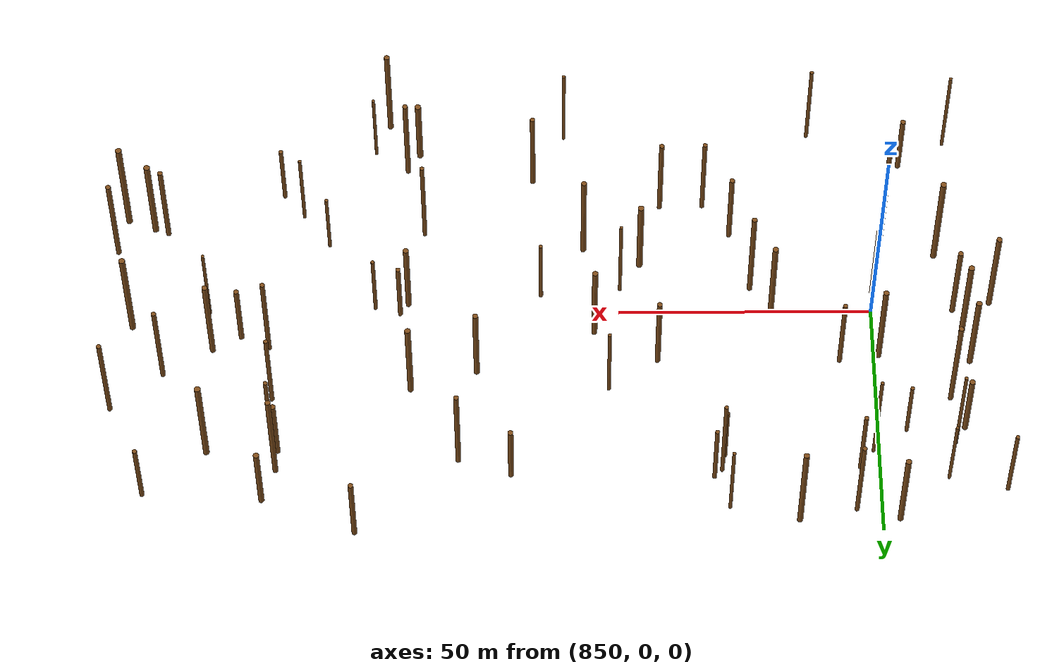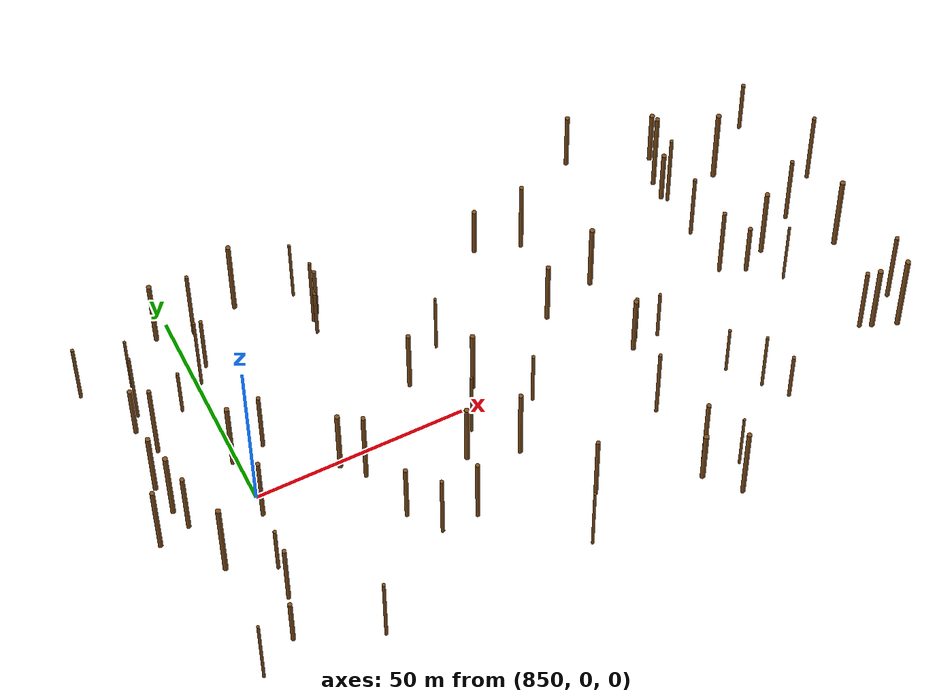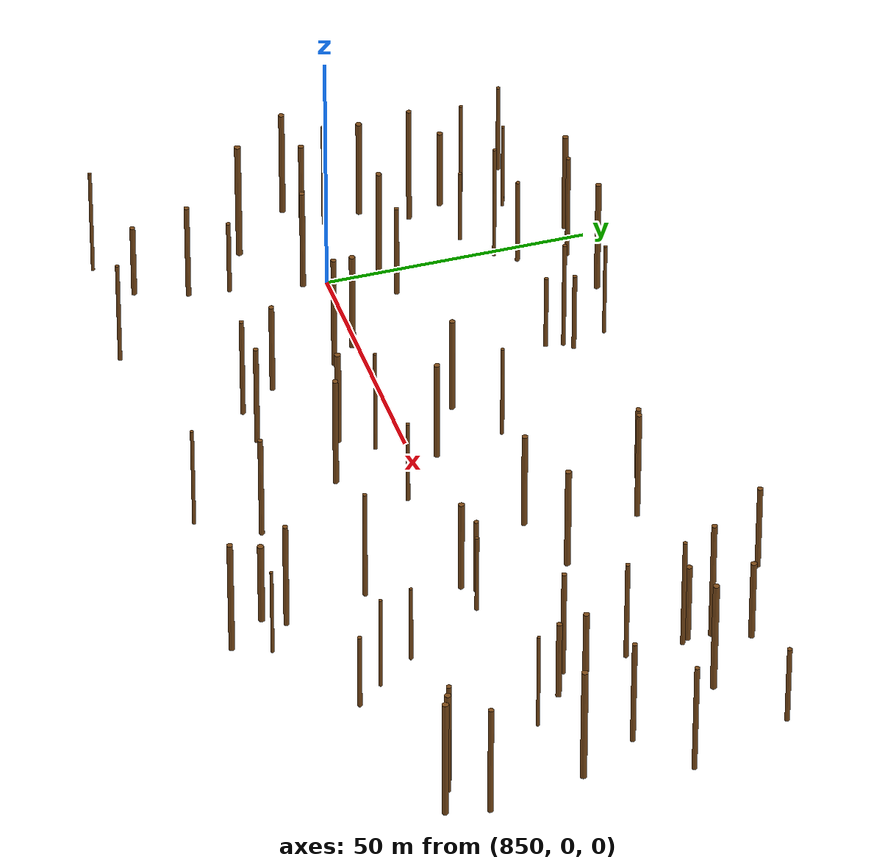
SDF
<sdf version="1.6">
 <world name="simple_forest">
  <include><uri>model://sun</uri></include>
  <model name="tree_6">
   <pose>957.6409414847134 -16.340545488737327 7.98358188416732 0 0 0</pose>
   <static>true</static>
   <link name="trunk">
    <collision name="collision">
     <geometry>
      <cylinder><radius>0.3278237530140444</radius><length>15.96716376833464</length></cylinder>
     </geometry>
    </collision>
    <visual name="visual">
     <geometry>
      <cylinder><radius>0.3278237530140444</radius><length>15.96716376833464</length></cylinder>
     </geometry>
     <material><ambient>0.5 0.3 0.1 1</ambient><diffuse>0.5 0.3 0.1 1</diffuse></material>
    </visual>
   </link>
  </model>
  <model name="tree_7">
   <pose>849.0194226839852 10.372603136689108 11.14865893346909 0 0 0</pose>
   <static>true</static>
   <link name="trunk">
    <collision name="collision">
     <geometry>
      <cylinder><radius>0.5421384819823141</radius><length>22.29731786693818</length></cylinder>
     </geometry>
    </collision>
    <visual name="visual">
     <geometry>
      <cylinder><radius>0.5421384819823141</radius><length>22.29731786693818</length></cylinder>
     </geometry>
     <material><ambient>0.5 0.3 0.1 1</ambient><diffuse>0.5 0.3 0.1 1</diffuse></material>
    </visual>
   </link>
  </model>
  <model name="tree_9">
   <pose>831.1106176104649 11.851975236424607 10.38676072628381 0 0 0</pose>
   <static>true</static>
   <link name="trunk">
    <collision name="collision">
     <geometry>
      <cylinder><radius>0.5585120700932331</radius><length>20.77352145256762</length></cylinder>
     </geometry>
    </collision>
    <visual name="visual">
     <geometry>
      <cylinder><radius>0.5585120700932331</radius><length>20.77352145256762</length></cylinder>
     </geometry>
     <material><ambient>0.5 0.3 0.1 1</ambient><diffuse>0.5 0.3 0.1 1</diffuse></material>
    </visual>
   </link>
  </model>
  <model name="tree_15">
   <pose>989.6281171302293 13.999975985409286 10.923071254949374 0 0 0</pose>
   <static>true</static>
   <link name="trunk">
    <collision name="collision">
     <geometry>
      <cylinder><radius>0.46708492313239386</radius><length>21.846142509898748</length></cylinder>
     </geometry>
    </collision>
    <visual name="visual">
     <geometry>
      <cylinder><radius>0.46708492313239386</radius><length>21.846142509898748</length></cylinder>
     </geometry>
     <material><ambient>0.5 0.3 0.1 1</ambient><diffuse>0.5 0.3 0.1 1</diffuse></material>
    </visual>
   </link>
  </model>
  <model name="tree_16">
   <pose>844.4234009879115 27.599991154624476 7.660501219520189 0 0 0</pose>
   <static>true</static>
   <link name="trunk">
    <collision name="collision">
     <geometry>
      <cylinder><radius>0.3687144215892313</radius><length>15.321002439040377</length></cylinder>
     </geometry>
    </collision>
    <visual name="visual">
     <geometry>
      <cylinder><radius>0.3687144215892313</radius><length>15.321002439040377</length></cylinder>
     </geometry>
     <material><ambient>0.5 0.3 0.1 1</ambient><diffuse>0.5 0.3 0.1 1</diffuse></material>
    </visual>
   </link>
  </model>
  <model name="tree_18">
   <pose>877.6039502079421 -18.532211920152207 9.47815950530332 0 0 0</pose>
   <static>true</static>
   <link name="trunk">
    <collision name="collision">
     <geometry>
      <cylinder><radius>0.49663159958846403</radius><length>18.95631901060664</length></cylinder>
     </geometry>
    </collision>
    <visual name="visual">
     <geometry>
      <cylinder><radius>0.49663159958846403</radius><length>18.95631901060664</length></cylinder>
     </geometry>
     <material><ambient>0.5 0.3 0.1 1</ambient><diffuse>0.5 0.3 0.1 1</diffuse></material>
    </visual>
   </link>
  </model>
  <model name="tree_19">
   <pose>915.4021138431381 -4.114814741260119 8.733137538469917 0 0 0</pose>
   <static>true</static>
   <link name="trunk">
    <collision name="collision">
     <geometry>
      <cylinder><radius>0.37946404994941574</radius><length>17.466275076939834</length></cylinder>
     </geometry>
    </collision>
    <visual name="visual">
     <geometry>
      <cylinder><radius>0.37946404994941574</radius><length>17.466275076939834</length></cylinder>
     </geometry>
     <material><ambient>0.5 0.3 0.1 1</ambient><diffuse>0.5 0.3 0.1 1</diffuse></material>
    </visual>
   </link>
  </model>
  <model name="tree_24">
   <pose>996.1601664376958 2.911434509913704 11.803898511172491 0 0 0</pose>
   <static>true</static>
   <link name="trunk">
    <collision name="collision">
     <geometry>
      <cylinder><radius>0.5913235132840855</radius><length>23.607797022344982</length></cylinder>
     </geometry>
    </collision>
    <visual name="visual">
     <geometry>
      <cylinder><radius>0.5913235132840855</radius><length>23.607797022344982</length></cylinder>
     </geometry>
     <material><ambient>0.5 0.3 0.1 1</ambient><diffuse>0.5 0.3 0.1 1</diffuse></material>
    </visual>
   </link>
  </model>
  <model name="tree_32">
   <pose>879.9346590449524 33.16655293611794 7.7896258324709375 0 0 0</pose>
   <static>true</static>
   <link name="trunk">
    <collision name="collision">
     <geometry>
      <cylinder><radius>0.3922542376207984</radius><length>15.579251664941875</length></cylinder>
     </geometry>
    </collision>
    <visual name="visual">
     <geometry>
      <cylinder><radius>0.3922542376207984</radius><length>15.579251664941875</length></cylinder>
     </geometry>
     <material><ambient>0.5 0.3 0.1 1</ambient><diffuse>0.5 0.3 0.1 1</diffuse></material>
    </visual>
   </link>
  </model>
  <model name="tree_33">
   <pose>879.2295032120002 44.694944529799415 9.92995231658307 0 0 0</pose>
   <static>true</static>
   <link name="trunk">
    <collision name="collision">
     <geometry>
      <cylinder><radius>0.32569603562036364</radius><length>19.85990463316614</length></cylinder>
     </geometry>
    </collision>
    <visual name="visual">
     <geometry>
      <cylinder><radius>0.32569603562036364</radius><length>19.85990463316614</length></cylinder>
     </geometry>
     <material><ambient>0.5 0.3 0.1 1</ambient><diffuse>0.5 0.3 0.1 1</diffuse></material>
    </visual>
   </link>
  </model>
  <model name="tree_41">
   <pose>861.039046251209 -42.91426501113466 10.844888891481403 0 0 0</pose>
   <static>true</static>
   <link name="trunk">
    <collision name="collision">
     <geometry>
      <cylinder><radius>0.3714013903106985</radius><length>21.689777782962807</length></cylinder>
     </geometry>
    </collision>
    <visual name="visual">
     <geometry>
      <cylinder><radius>0.3714013903106985</radius><length>21.689777782962807</length></cylinder>
     </geometry>
     <material><ambient>0.5 0.3 0.1 1</ambient><diffuse>0.5 0.3 0.1 1</diffuse></material>
    </visual>
   </link>
  </model>
  <model name="tree_50">
   <pose>969.3062947119038 42.63669830081275 8.33155555301957 0 0 0</pose>
   <static>true</static>
   <link name="trunk">
    <collision name="collision">
     <geometry>
      <cylinder><radius>0.5546087203242915</radius><length>16.66311110603914</length></cylinder>
     </geometry>
    </collision>
    <visual name="visual">
     <geometry>
      <cylinder><radius>0.5546087203242915</radius><length>16.66311110603914</length></cylinder>
     </geometry>
     <material><ambient>0.5 0.3 0.1 1</ambient><diffuse>0.5 0.3 0.1 1</diffuse></material>
    </visual>
   </link>
  </model>
  <model name="tree_55">
   <pose>969.0222713194672 7.918029081625619 11.239877801895322 0 0 0</pose>
   <static>true</static>
   <link name="trunk">
    <collision name="collision">
     <geometry>
      <cylinder><radius>0.46265856041228226</radius><length>22.479755603790643</length></cylinder>
     </geometry>
    </collision>
    <visual name="visual">
     <geometry>
      <cylinder><radius>0.46265856041228226</radius><length>22.479755603790643</length></cylinder>
     </geometry>
     <material><ambient>0.5 0.3 0.1 1</ambient><diffuse>0.5 0.3 0.1 1</diffuse></material>
    </visual>
   </link>
  </model>
  <model name="tree_59">
   <pose>891.3844409881432 -25.378465221137514 10.596907551660514 0 0 0</pose>
   <static>true</static>
   <link name="trunk">
    <collision name="collision">
     <geometry>
      <cylinder><radius>0.47835574606003234</radius><length>21.19381510332103</length></cylinder>
     </geometry>
    </collision>
    <visual name="visual">
     <geometry>
      <cylinder><radius>0.47835574606003234</radius><length>21.19381510332103</length></cylinder>
     </geometry>
     <material><ambient>0.5 0.3 0.1 1</ambient><diffuse>0.5 0.3 0.1 1</diffuse></material>
    </visual>
   </link>
  </model>
  <model name="tree_65">
   <pose>882.0555319495752 37.92702424845427 8.28873416178616 0 0 0</pose>
   <static>true</static>
   <link name="trunk">
    <collision name="collision">
     <geometry>
      <cylinder><radius>0.41085812662166515</radius><length>16.57746832357232</length></cylinder>
     </geometry>
    </collision>
    <visual name="visual">
     <geometry>
      <cylinder><radius>0.41085812662166515</radius><length>16.57746832357232</length></cylinder>
     </geometry>
     <material><ambient>0.5 0.3 0.1 1</ambient><diffuse>0.5 0.3 0.1 1</diffuse></material>
    </visual>
   </link>
  </model>
  <model name="tree_66">
   <pose>835.407505093409 20.353992508737093 12.43616531815752 0 0 0</pose>
   <static>true</static>
   <link name="trunk">
    <collision name="collision">
     <geometry><cylinder><radius>0.483503329717785</radius><length>24.87233063631504</length></cylinder></geometry>
    </collision>
    <visual name="visual">
     <geometry><cylinder><radius>0.483503329717785</radius><length>24.87233063631504</length></cylinder></geometry>
     <material><ambient>0.5 0.3 0.1 1</ambient><diffuse>0.5 0.3 0.1 1</diffuse></material>
    </visual>
   </link>
  </model>
  <model name="tree_75">
   <pose>904.8892858442942 4.55902892055223 10.41254783244897 0 0 0</pose>
   <static>true</static>
   <link name="trunk">
    <collision name="collision">
     <geometry>
      <cylinder><radius>0.5503785059658051</radius><length>20.82509566489794</length></cylinder>
     </geometry>
    </collision>
    <visual name="visual">
     <geometry>
      <cylinder><radius>0.5503785059658051</radius><length>20.82509566489794</length></cylinder>
     </geometry>
     <material><ambient>0.5 0.3 0.1 1</ambient><diffuse>0.5 0.3 0.1 1</diffuse></material>
    </visual>
   </link>
  </model>
  <model name="tree_80">
   <pose>865.9596392577644 47.62060329309628 11.907081023316621 0 0 0</pose>
   <static>true</static>
   <link name="trunk">
    <collision name="collision">
     <geometry>
      <cylinder><radius>0.543231515982119</radius><length>23.814162046633243</length></cylinder>
     </geometry>
    </collision>
    <visual name="visual">
     <geometry>
      <cylinder><radius>0.543231515982119</radius><length>23.814162046633243</length></cylinder>
     </geometry>
     <material><ambient>0.5 0.3 0.1 1</ambient><diffuse>0.5 0.3 0.1 1</diffuse></material>
    </visual>
   </link>
  </model>
  <model name="tree_88">
   <pose>939.8447689214686 -38.46582481485724 8.392839080862318 0 0 0</pose>
   <static>true</static>
   <link name="trunk">
    <collision name="collision">
     <geometry>
      <cylinder><radius>0.5911201833066684</radius><length>16.785678161724636</length></cylinder>
     </geometry>
    </collision>
    <visual name="visual">
     <geometry>
      <cylinder><radius>0.5911201833066684</radius><length>16.785678161724636</length></cylinder>
     </geometry>
     <material><ambient>0.5 0.3 0.1 1</ambient><diffuse>0.5 0.3 0.1 1</diffuse></material>
    </visual>
   </link>
  </model>
  <model name="tree_89">
   <pose>962.9089726039399 -23.453363747703136 9.672818792823222 0 0 0</pose>
   <static>true</static>
   <link name="trunk">
    <collision name="collision">
     <geometry>
      <cylinder><radius>0.33252076416441334</radius><length>19.345637585646443</length></cylinder>
     </geometry>
    </collision>
    <visual name="visual">
     <geometry>
      <cylinder><radius>0.33252076416441334</radius><length>19.345637585646443</length></cylinder>
     </geometry>
     <material><ambient>0.5 0.3 0.1 1</ambient><diffuse>0.5 0.3 0.1 1</diffuse></material>
    </visual>
   </link>
  </model>
  <model name="tree_97">
   <pose>940.9600340228811 17.731794527273294 10.577574579756902 0 0 0</pose>
   <static>true</static>
   <link name="trunk">
    <collision name="collision">
     <geometry>
      <cylinder><radius>0.5708416637197748</radius><length>21.155149159513805</length></cylinder>
     </geometry>
    </collision>
    <visual name="visual">
     <geometry>
      <cylinder><radius>0.5708416637197748</radius><length>21.155149159513805</length></cylinder>
     </geometry>
     <material><ambient>0.5 0.3 0.1 1</ambient><diffuse>0.5 0.3 0.1 1</diffuse></material>
    </visual>
   </link>
  </model>
  <model name="tree_111">
   <pose>892.5116665523326 11.265232276176285 10.02389082412201 0 0 0</pose>
   <static>true</static>
   <link name="trunk">
    <collision name="collision">
     <geometry>
      <cylinder><radius>0.5157821883827901</radius><length>20.04778164824402</length></cylinder>
     </geometry>
    </collision>
    <visual name="visual">
     <geometry>
      <cylinder><radius>0.5157821883827901</radius><length>20.04778164824402</length></cylinder>
     </geometry>
     <material><ambient>0.5 0.3 0.1 1</ambient><diffuse>0.5 0.3 0.1 1</diffuse></material>
    </visual>
   </link>
  </model>
  <model name="tree_112">
   <pose>832.2634780242009 4.787195061082841 11.218277210797925 0 0 0</pose>
   <static>true</static>
   <link name="trunk">
    <collision name="collision">
     <geometry>
      <cylinder><radius>0.5691624309699786</radius><length>22.43655442159585</length></cylinder>
     </geometry>
    </collision>
    <visual name="visual">
     <geometry>
      <cylinder><radius>0.5691624309699786</radius><length>22.43655442159585</length></cylinder>
     </geometry>
     <material><ambient>0.5 0.3 0.1 1</ambient><diffuse>0.5 0.3 0.1 1</diffuse></material>
    </visual>
   </link>
  </model>
  <model name="tree_121">
   <pose>854.9134710634136 45.34303384701063 11.237578344890254 0 0 0</pose>
   <static>true</static>
   <link name="trunk">
    <collision name="collision">
     <geometry>
      <cylinder><radius>0.4257063847889465</radius><length>22.47515668978051</length></cylinder>
     </geometry>
    </collision>
    <visual name="visual">
     <geometry>
      <cylinder><radius>0.4257063847889465</radius><length>22.47515668978051</length></cylinder>
     </geometry>
     <material><ambient>0.5 0.3 0.1 1</ambient><diffuse>0.5 0.3 0.1 1</diffuse></material>
    </visual>
   </link>
  </model>
  <model name="tree_130">
   <pose>999.9087502241172 -15.003965627981607 11.406165248054474 0 0 0</pose>
   <static>true</static>
   <link name="trunk">
    <collision name="collision">
     <geometry>
      <cylinder><radius>0.4950432279749625</radius><length>22.81233049610895</length></cylinder>
     </geometry>
    </collision>
    <visual name="visual">
     <geometry>
      <cylinder><radius>0.4950432279749625</radius><length>22.81233049610895</length></cylinder>
     </geometry>
     <material><ambient>0.5 0.3 0.1 1</ambient><diffuse>0.5 0.3 0.1 1</diffuse></material>
    </visual>
   </link>
  </model>
  <model name="tree_141">
   <pose>851.0798707295816 32.23309180900581 12.303937836072894 0 0 0</pose>
   <static>true</static>
   <link name="trunk">
    <collision name="collision">
     <geometry>
      <cylinder><radius>0.33166166119319956</radius><length>24.607875672145788</length></cylinder>
     </geometry>
    </collision>
    <visual name="visual">
     <geometry>
      <cylinder><radius>0.33166166119319956</radius><length>24.607875672145788</length></cylinder>
     </geometry>
     <material><ambient>0.5 0.3 0.1 1</ambient><diffuse>0.5 0.3 0.1 1</diffuse></material>
    </visual>
   </link>
  </model>
  <model name="tree_146">
   <pose>882.8148721627442 -25.613656080904402 10.551658521152603 0 0 0</pose>
   <static>true</static>
   <link name="trunk">
    <collision name="collision">
     <geometry>
      <cylinder><radius>0.4394125399809695</radius><length>21.103317042305207</length></cylinder>
     </geometry>
    </collision>
    <visual name="visual">
     <geometry>
      <cylinder><radius>0.4394125399809695</radius><length>21.103317042305207</length></cylinder>
     </geometry>
     <material><ambient>0.5 0.3 0.1 1</ambient><diffuse>0.5 0.3 0.1 1</diffuse></material>
    </visual>
   </link>
  </model>
  <model name="tree_160">
   <pose>974.5519817917105 5.335896679860831 8.131397464792045 0 0 0</pose>
   <static>true</static>
   <link name="trunk">
    <collision name="collision">
     <geometry>
      <cylinder><radius>0.5092252178730583</radius><length>16.26279492958409</length></cylinder>
     </geometry>
    </collision>
    <visual name="visual">
     <geometry>
      <cylinder><radius>0.5092252178730583</radius><length>16.26279492958409</length></cylinder>
     </geometry>
     <material><ambient>0.5 0.3 0.1 1</ambient><diffuse>0.5 0.3 0.1 1</diffuse></material>
    </visual>
   </link>
  </model>
  <model name="tree_161">
   <pose>869.7765852903145 -0.9121305476221124 10.370321098131662 0 0 0</pose>
   <static>true</static>
   <link name="trunk">
    <collision name="collision">
     <geometry>
      <cylinder><radius>0.5618159204995603</radius><length>20.740642196263323</length></cylinder>
     </geometry>
    </collision>
    <visual name="visual">
     <geometry>
      <cylinder><radius>0.5618159204995603</radius><length>20.740642196263323</length></cylinder>
     </geometry>
     <material><ambient>0.5 0.3 0.1 1</ambient><diffuse>0.5 0.3 0.1 1</diffuse></material>
    </visual>
   </link>
  </model>
  <model name="tree_163">
   <pose>941.6529608004222 -2.2270812734312315 9.5035372112597 0 0 0</pose>
   <static>true</static>
   <link name="trunk">
    <collision name="collision">
     <geometry><cylinder><radius>0.5466346935898291</radius><length>19.0070744225194</length></cylinder></geometry>
    </collision>
    <visual name="visual">
     <geometry><cylinder><radius>0.5466346935898291</radius><length>19.0070744225194</length></cylinder></geometry>
     <material><ambient>0.5 0.3 0.1 1</ambient><diffuse>0.5 0.3 0.1 1</diffuse></material>
    </visual>
   </link>
  </model>
  <model name="tree_168">
   <pose>990.1309478621299 -19.46197556806396 10.548154561225651 0 0 0</pose>
   <static>true</static>
   <link name="trunk">
    <collision name="collision">
     <geometry>
      <cylinder><radius>0.48630819632164457</radius><length>21.096309122451302</length></cylinder>
     </geometry>
    </collision>
    <visual name="visual">
     <geometry>
      <cylinder><radius>0.48630819632164457</radius><length>21.096309122451302</length></cylinder>
     </geometry>
     <material><ambient>0.5 0.3 0.1 1</ambient><diffuse>0.5 0.3 0.1 1</diffuse></material>
    </visual>
   </link>
  </model>
  <model name="tree_178">
   <pose>943.2494783366004 0.047217711792555406 7.902209259496505 0 0 0</pose>
   <static>true</static>
   <link name="trunk">
    <collision name="collision">
     <geometry>
      <cylinder><radius>0.4481385658035253</radius><length>15.80441851899301</length></cylinder>
     </geometry>
    </collision>
    <visual name="visual">
     <geometry>
      <cylinder><radius>0.4481385658035253</radius><length>15.80441851899301</length></cylinder>
     </geometry>
     <material><ambient>0.5 0.3 0.1 1</ambient><diffuse>0.5 0.3 0.1 1</diffuse></material>
    </visual>
   </link>
  </model>
  <model name="tree_181">
   <pose>951.2784150282889 49.95724168774514 8.84755512983527 0 0 0</pose>
   <static>true</static>
   <link name="trunk">
    <collision name="collision">
     <geometry>
      <cylinder><radius>0.5016844752909717</radius><length>17.69511025967054</length></cylinder>
     </geometry>
    </collision>
    <visual name="visual">
     <geometry>
      <cylinder><radius>0.5016844752909717</radius><length>17.69511025967054</length></cylinder>
     </geometry>
     <material><ambient>0.5 0.3 0.1 1</ambient><diffuse>0.5 0.3 0.1 1</diffuse></material>
    </visual>
   </link>
  </model>
  <model name="tree_183">
   <pose>916.9120600474998 -31.851085277687407 10.673923597270434 0 0 0</pose>
   <static>true</static>
   <link name="trunk">
    <collision name="collision">
     <geometry>
      <cylinder><radius>0.47559888758335633</radius><length>21.34784719454087</length></cylinder>
     </geometry>
    </collision>
    <visual name="visual">
     <geometry>
      <cylinder><radius>0.47559888758335633</radius><length>21.34784719454087</length></cylinder>
     </geometry>
     <material><ambient>0.5 0.3 0.1 1</ambient><diffuse>0.5 0.3 0.1 1</diffuse></material>
    </visual>
   </link>
  </model>
  <model name="tree_194">
   <pose>992.3345680012675 41.2929878484168 8.087330745447789 0 0 0</pose>
   <static>true</static>
   <link name="trunk">
    <collision name="collision">
     <geometry>
      <cylinder><radius>0.438434368253635</radius><length>16.174661490895577</length></cylinder>
     </geometry>
    </collision>
    <visual name="visual">
     <geometry>
      <cylinder><radius>0.438434368253635</radius><length>16.174661490895577</length></cylinder>
     </geometry>
     <material><ambient>0.5 0.3 0.1 1</ambient><diffuse>0.5 0.3 0.1 1</diffuse></material>
    </visual>
   </link>
  </model>
  <model name="tree_195">
   <pose>833.8217420312122 -0.1624495292804724 10.044360075347559 0 0 0</pose>
   <static>true</static>
   <link name="trunk">
    <collision name="collision">
     <geometry>
      <cylinder><radius>0.5149809977975373</radius><length>20.088720150695117</length></cylinder>
     </geometry>
    </collision>
    <visual name="visual">
     <geometry>
      <cylinder><radius>0.5149809977975373</radius><length>20.088720150695117</length></cylinder>
     </geometry>
     <material><ambient>0.5 0.3 0.1 1</ambient><diffuse>0.5 0.3 0.1 1</diffuse></material>
    </visual>
   </link>
  </model>
  <model name="tree_198">
   <pose>880.5329925950114 36.40269344285882 11.450030910015567 0 0 0</pose>
   <static>true</static>
   <link name="trunk">
    <collision name="collision">
     <geometry>
      <cylinder><radius>0.38287422084661227</radius><length>22.900061820031134</length></cylinder>
     </geometry>
    </collision>
    <visual name="visual">
     <geometry>
      <cylinder><radius>0.38287422084661227</radius><length>22.900061820031134</length></cylinder>
     </geometry>
     <material><ambient>0.5 0.3 0.1 1</ambient><diffuse>0.5 0.3 0.1 1</diffuse></material>
    </visual>
   </link>
  </model>
  <model name="tree_206">
   <pose>981.0099572731872 -0.4671350383576467 10.01145575066483 0 0 0</pose>
   <static>true</static>
   <link name="trunk">
    <collision name="collision">
     <geometry>
      <cylinder><radius>0.31110588340367284</radius><length>20.02291150132966</length></cylinder>
     </geometry>
    </collision>
    <visual name="visual">
     <geometry>
      <cylinder><radius>0.31110588340367284</radius><length>20.02291150132966</length></cylinder>
     </geometry>
     <material><ambient>0.5 0.3 0.1 1</ambient><diffuse>0.5 0.3 0.1 1</diffuse></material>
    </visual>
   </link>
  </model>
  <model name="tree_211">
   <pose>853.8179232002341 35.93421841682665 9.083305769666998 0 0 0</pose>
   <static>true</static>
   <link name="trunk">
    <collision name="collision">
     <geometry>
      <cylinder><radius>0.4140028192567965</radius><length>18.166611539333996</length></cylinder>
     </geometry>
    </collision>
    <visual name="visual">
     <geometry>
      <cylinder><radius>0.4140028192567965</radius><length>18.166611539333996</length></cylinder>
     </geometry>
     <material><ambient>0.5 0.3 0.1 1</ambient><diffuse>0.5 0.3 0.1 1</diffuse></material>
    </visual>
   </link>
  </model>
  <model name="tree_215">
   <pose>873.8534402810197 -5.632144833829422 12.01712031025243 0 0 0</pose>
   <static>true</static>
   <link name="trunk">
    <collision name="collision">
     <geometry>
      <cylinder><radius>0.5082003488379704</radius><length>24.03424062050486</length></cylinder>
     </geometry>
    </collision>
    <visual name="visual">
     <geometry>
      <cylinder><radius>0.5082003488379704</radius><length>24.03424062050486</length></cylinder>
     </geometry>
     <material><ambient>0.5 0.3 0.1 1</ambient><diffuse>0.5 0.3 0.1 1</diffuse></material>
    </visual>
   </link>
  </model>
  <model name="tree_221">
   <pose>902.1973293628942 17.76108856990794 9.708648918019072 0 0 0</pose>
   <static>true</static>
   <link name="trunk">
    <collision name="collision">
     <geometry>
      <cylinder><radius>0.34739268662153605</radius><length>19.417297836038145</length></cylinder>
     </geometry>
    </collision>
    <visual name="visual">
     <geometry>
      <cylinder><radius>0.34739268662153605</radius><length>19.417297836038145</length></cylinder>
     </geometry>
     <material><ambient>0.5 0.3 0.1 1</ambient><diffuse>0.5 0.3 0.1 1</diffuse></material>
    </visual>
   </link>
  </model>
  <model name="tree_225">
   <pose>992.7651231906286 -20.476924611673063 10.791149079643404 0 0 0</pose>
   <static>true</static>
   <link name="trunk">
    <collision name="collision">
     <geometry>
      <cylinder><radius>0.5933833453730588</radius><length>21.582298159286808</length></cylinder>
     </geometry>
    </collision>
    <visual name="visual">
     <geometry>
      <cylinder><radius>0.5933833453730588</radius><length>21.582298159286808</length></cylinder>
     </geometry>
     <material><ambient>0.5 0.3 0.1 1</ambient><diffuse>0.5 0.3 0.1 1</diffuse></material>
    </visual>
   </link>
  </model>
  <model name="tree_235">
   <pose>826.4429144169832 -1.8152170126258795 11.232796753585225 0 0 0</pose>
   <static>true</static>
   <link name="trunk">
    <collision name="collision">
     <geometry>
      <cylinder><radius>0.5419465481381299</radius><length>22.46559350717045</length></cylinder>
     </geometry>
    </collision>
    <visual name="visual">
     <geometry>
      <cylinder><radius>0.5419465481381299</radius><length>22.46559350717045</length></cylinder>
     </geometry>
     <material><ambient>0.5 0.3 0.1 1</ambient><diffuse>0.5 0.3 0.1 1</diffuse></material>
    </visual>
   </link>
  </model>
  <model name="tree_237">
   <pose>966.8352073681245 36.01405968988219 12.399711213909518 0 0 0</pose>
   <static>true</static>
   <link name="trunk">
    <collision name="collision">
     <geometry>
      <cylinder><radius>0.5172650136226554</radius><length>24.799422427819035</length></cylinder>
     </geometry>
    </collision>
    <visual name="visual">
     <geometry>
      <cylinder><radius>0.5172650136226554</radius><length>24.799422427819035</length></cylinder>
     </geometry>
     <material><ambient>0.5 0.3 0.1 1</ambient><diffuse>0.5 0.3 0.1 1</diffuse></material>
    </visual>
   </link>
  </model>
  <model name="tree_238">
   <pose>967.597049827032 30.45876440205619 11.453409842944687 0 0 0</pose>
   <static>true</static>
   <link name="trunk">
    <collision name="collision">
     <geometry>
      <cylinder><radius>0.4097325148216699</radius><length>22.906819685889374</length></cylinder>
     </geometry>
    </collision>
    <visual name="visual">
     <geometry>
      <cylinder><radius>0.4097325148216699</radius><length>22.906819685889374</length></cylinder>
     </geometry>
     <material><ambient>0.5 0.3 0.1 1</ambient><diffuse>0.5 0.3 0.1 1</diffuse></material>
    </visual>
   </link>
  </model>
  <model name="tree_243">
   <pose>825.6167978765432 40.9387638427892 9.541479278977064 0 0 0</pose>
   <static>true</static>
   <link name="trunk">
    <collision name="collision">
     <geometry>
      <cylinder><radius>0.39065705235877507</radius><length>19.08295855795413</length></cylinder>
     </geometry>
    </collision>
    <visual name="visual">
     <geometry>
      <cylinder><radius>0.39065705235877507</radius><length>19.08295855795413</length></cylinder>
     </geometry>
     <material><ambient>0.5 0.3 0.1 1</ambient><diffuse>0.5 0.3 0.1 1</diffuse></material>
    </visual>
   </link>
  </model>
  <model name="tree_252">
   <pose>849.5528565790443 -4.528263142948283 10.708522336166087 0 0 0</pose>
   <static>true</static>
   <link name="trunk">
    <collision name="collision">
     <geometry>
      <cylinder><radius>0.49883062141859336</radius><length>21.417044672332175</length></cylinder>
     </geometry>
    </collision>
    <visual name="visual">
     <geometry>
      <cylinder><radius>0.49883062141859336</radius><length>21.417044672332175</length></cylinder>
     </geometry>
     <material><ambient>0.5 0.3 0.1 1</ambient><diffuse>0.5 0.3 0.1 1</diffuse></material>
    </visual>
   </link>
  </model>
  <model name="tree_262">
   <pose>945.9614865404052 -45.66349631008283 11.834904538799192 0 0 0</pose>
   <static>true</static>
   <link name="trunk">
    <collision name="collision">
     <geometry>
      <cylinder><radius>0.5349680987941139</radius><length>23.669809077598384</length></cylinder>
     </geometry>
    </collision>
    <visual name="visual">
     <geometry>
      <cylinder><radius>0.5349680987941139</radius><length>23.669809077598384</length></cylinder>
     </geometry>
     <material><ambient>0.5 0.3 0.1 1</ambient><diffuse>0.5 0.3 0.1 1</diffuse></material>
    </visual>
   </link>
  </model>
  <model name="tree_265">
   <pose>910.603820824077 -42.65092842335495 10.5414871181672 0 0 0</pose>
   <static>true</static>
   <link name="trunk">
    <collision name="collision">
     <geometry>
      <cylinder><radius>0.32423714322323754</radius><length>21.0829742363344</length></cylinder>
     </geometry>
    </collision>
    <visual name="visual">
     <geometry>
      <cylinder><radius>0.32423714322323754</radius><length>21.0829742363344</length></cylinder>
     </geometry>
     <material><ambient>0.5 0.3 0.1 1</ambient><diffuse>0.5 0.3 0.1 1</diffuse></material>
    </visual>
   </link>
  </model>
  <model name="tree_273">
   <pose>833.454169590106 -40.67698982963226 11.193979992443579 0 0 0</pose>
   <static>true</static>
   <link name="trunk">
    <collision name="collision">
     <geometry>
      <cylinder><radius>0.3289693297697357</radius><length>22.387959984887157</length></cylinder>
     </geometry>
    </collision>
    <visual name="visual">
     <geometry>
      <cylinder><radius>0.3289693297697357</radius><length>22.387959984887157</length></cylinder>
     </geometry>
     <material><ambient>0.5 0.3 0.1 1</ambient><diffuse>0.5 0.3 0.1 1</diffuse></material>
    </visual>
   </link>
  </model>
  <model name="tree_280">
   <pose>846.7036097150745 47.454660212570815 10.567866402677325 0 0 0</pose>
   <static>true</static>
   <link name="trunk">
    <collision name="collision">
     <geometry>
      <cylinder><radius>0.5455280578622008</radius><length>21.13573280535465</length></cylinder>
     </geometry>
    </collision>
    <visual name="visual">
     <geometry>
      <cylinder><radius>0.5455280578622008</radius><length>21.13573280535465</length></cylinder>
     </geometry>
     <material><ambient>0.5 0.3 0.1 1</ambient><diffuse>0.5 0.3 0.1 1</diffuse></material>
    </visual>
   </link>
  </model>
  <model name="tree_295">
   <pose>835.0206603956794 30.62001865667638 11.808821810112942 0 0 0</pose>
   <static>true</static>
   <link name="trunk">
    <collision name="collision">
     <geometry>
      <cylinder><radius>0.32162264897764736</radius><length>23.617643620225884</length></cylinder>
     </geometry>
    </collision>
    <visual name="visual">
     <geometry>
      <cylinder><radius>0.32162264897764736</radius><length>23.617643620225884</length></cylinder>
     </geometry>
     <material><ambient>0.5 0.3 0.1 1</ambient><diffuse>0.5 0.3 0.1 1</diffuse></material>
    </visual>
   </link>
  </model>
  <model name="tree_300">
   <pose>846.0395162165499 -25.668352517726632 10.119812715003158 0 0 0</pose>
   <static>true</static>
   <link name="trunk">
    <collision name="collision">
     <geometry>
      <cylinder><radius>0.47666138649087353</radius><length>20.239625430006317</length></cylinder>
     </geometry>
    </collision>
    <visual name="visual">
     <geometry>
      <cylinder><radius>0.47666138649087353</radius><length>20.239625430006317</length></cylinder>
     </geometry>
     <material><ambient>0.5 0.3 0.1 1</ambient><diffuse>0.5 0.3 0.1 1</diffuse></material>
    </visual>
   </link>
  </model>
  <model name="tree_303">
   <pose>906.86350426425 -15.06247345276197 11.59474300762426 0 0 0</pose>
   <static>true</static>
   <link name="trunk">
    <collision name="collision">
     <geometry>
      <cylinder><radius>0.5182137317021713</radius><length>23.18948601524852</length></cylinder>
     </geometry>
    </collision>
    <visual name="visual">
     <geometry>
      <cylinder><radius>0.5182137317021713</radius><length>23.18948601524852</length></cylinder>
     </geometry>
     <material><ambient>0.5 0.3 0.1 1</ambient><diffuse>0.5 0.3 0.1 1</diffuse></material>
    </visual>
   </link>
  </model>
  <model name="tree_312">
   <pose>856.7404377415294 11.50083884155736 9.813558294636362 0 0 0</pose>
   <static>true</static>
   <link name="trunk">
    <collision name="collision">
     <geometry>
      <cylinder><radius>0.4521203452001865</radius><length>19.627116589272724</length></cylinder>
     </geometry>
    </collision>
    <visual name="visual">
     <geometry>
      <cylinder><radius>0.4521203452001865</radius><length>19.627116589272724</length></cylinder>
     </geometry>
     <material><ambient>0.5 0.3 0.1 1</ambient><diffuse>0.5 0.3 0.1 1</diffuse></material>
    </visual>
   </link>
  </model>
  <model name="tree_323">
   <pose>968.0195426158172 19.847996281188102 10.475206140757873 0 0 0</pose>
   <static>true</static>
   <link name="trunk">
    <collision name="collision">
     <geometry>
      <cylinder><radius>0.41758739530060807</radius><length>20.950412281515746</length></cylinder>
     </geometry>
    </collision>
    <visual name="visual">
     <geometry>
      <cylinder><radius>0.41758739530060807</radius><length>20.950412281515746</length></cylinder>
     </geometry>
     <material><ambient>0.5 0.3 0.1 1</ambient><diffuse>0.5 0.3 0.1 1</diffuse></material>
    </visual>
   </link>
  </model>
  <model name="tree_324">
   <pose>938.6221775701032 -19.041811258403907 11.458309789317717 0 0 0</pose>
   <static>true</static>
   <link name="trunk">
    <collision name="collision">
     <geometry>
      <cylinder><radius>0.41300379181689006</radius><length>22.916619578635434</length></cylinder>
     </geometry>
    </collision>
    <visual name="visual">
     <geometry>
      <cylinder><radius>0.41300379181689006</radius><length>22.916619578635434</length></cylinder>
     </geometry>
     <material><ambient>0.5 0.3 0.1 1</ambient><diffuse>0.5 0.3 0.1 1</diffuse></material>
    </visual>
   </link>
  </model>
  <model name="tree_328">
   <pose>948.1915848590033 -1.3729079127272712 8.187826765885397 0 0 0</pose>
   <static>true</static>
   <link name="trunk">
    <collision name="collision">
     <geometry>
      <cylinder><radius>0.36796291396016617</radius><length>16.375653531770794</length></cylinder>
     </geometry>
    </collision>
    <visual name="visual">
     <geometry>
      <cylinder><radius>0.36796291396016617</radius><length>16.375653531770794</length></cylinder>
     </geometry>
     <material><ambient>0.5 0.3 0.1 1</ambient><diffuse>0.5 0.3 0.1 1</diffuse></material>
    </visual>
   </link>
  </model>
  <model name="tree_330">
   <pose>836.7686283682104 38.36821654925616 9.183821859821407 0 0 0</pose>
   <static>true</static>
   <link name="trunk">
    <collision name="collision">
     <geometry>
      <cylinder><radius>0.31132424770726835</radius><length>18.367643719642814</length></cylinder>
     </geometry>
    </collision>
    <visual name="visual">
     <geometry>
      <cylinder><radius>0.31132424770726835</radius><length>18.367643719642814</length></cylinder>
     </geometry>
     <material><ambient>0.5 0.3 0.1 1</ambient><diffuse>0.5 0.3 0.1 1</diffuse></material>
    </visual>
   </link>
  </model>
  <model name="tree_332">
   <pose>833.0316061222343 27.10978137309884 8.327695828720293 0 0 0</pose>
   <static>true</static>
   <link name="trunk">
    <collision name="collision">
     <geometry>
      <cylinder><radius>0.5427131158917903</radius><length>16.655391657440585</length></cylinder>
     </geometry>
    </collision>
    <visual name="visual">
     <geometry>
      <cylinder><radius>0.5427131158917903</radius><length>16.655391657440585</length></cylinder>
     </geometry>
     <material><ambient>0.5 0.3 0.1 1</ambient><diffuse>0.5 0.3 0.1 1</diffuse></material>
    </visual>
   </link>
  </model>
  <model name="tree_336">
   <pose>836.7622587984504 -13.215904177496718 12.422198967657886 0 0 0</pose>
   <static>true</static>
   <link name="trunk">
    <collision name="collision">
     <geometry>
      <cylinder><radius>0.5841390510732369</radius><length>24.844397935315772</length></cylinder>
     </geometry>
    </collision>
    <visual name="visual">
     <geometry>
      <cylinder><radius>0.5841390510732369</radius><length>24.844397935315772</length></cylinder>
     </geometry>
     <material><ambient>0.5 0.3 0.1 1</ambient><diffuse>0.5 0.3 0.1 1</diffuse></material>
    </visual>
   </link>
  </model>
  <model name="tree_338">
   <pose>966.6054716738878 31.689123958124014 8.191992673017156 0 0 0</pose>
   <static>true</static>
   <link name="trunk">
    <collision name="collision">
     <geometry>
      <cylinder><radius>0.5403777672454643</radius><length>16.38398534603431</length></cylinder>
     </geometry>
    </collision>
    <visual name="visual">
     <geometry>
      <cylinder><radius>0.5403777672454643</radius><length>16.38398534603431</length></cylinder>
     </geometry>
     <material><ambient>0.5 0.3 0.1 1</ambient><diffuse>0.5 0.3 0.1 1</diffuse></material>
    </visual>
   </link>
  </model>
  <model name="tree_345">
   <pose>931.5176457024536 33.91762876116057 11.45690318741088 0 0 0</pose>
   <static>true</static>
   <link name="trunk">
    <collision name="collision">
     <geometry>
      <cylinder><radius>0.4949882052882545</radius><length>22.91380637482176</length></cylinder>
     </geometry>
    </collision>
    <visual name="visual">
     <geometry>
      <cylinder><radius>0.4949882052882545</radius><length>22.91380637482176</length></cylinder>
     </geometry>
     <material><ambient>0.5 0.3 0.1 1</ambient><diffuse>0.5 0.3 0.1 1</diffuse></material>
    </visual>
   </link>
  </model>
  <model name="tree_367">
   <pose>895.6911200055027 -11.335523173930781 9.981016132685113 0 0 0</pose>
   <static>true</static>
   <link name="trunk">
    <collision name="collision">
     <geometry>
      <cylinder><radius>0.5921170752945927</radius><length>19.962032265370226</length></cylinder>
     </geometry>
    </collision>
    <visual name="visual">
     <geometry>
      <cylinder><radius>0.5921170752945927</radius><length>19.962032265370226</length></cylinder>
     </geometry>
     <material><ambient>0.5 0.3 0.1 1</ambient><diffuse>0.5 0.3 0.1 1</diffuse></material>
    </visual>
   </link>
  </model>
  <model name="tree_373">
   <pose>998.1690917953185 -22.544463992514242 12.239521893015432 0 0 0</pose>
   <static>true</static>
   <link name="trunk">
    <collision name="collision">
     <geometry>
      <cylinder><radius>0.5940081837582838</radius><length>24.479043786030864</length></cylinder>
     </geometry>
    </collision>
    <visual name="visual">
     <geometry>
      <cylinder><radius>0.5940081837582838</radius><length>24.479043786030864</length></cylinder>
     </geometry>
     <material><ambient>0.5 0.3 0.1 1</ambient><diffuse>0.5 0.3 0.1 1</diffuse></material>
    </visual>
   </link>
  </model>
  <model name="tree_384">
   <pose>899.692240478368 -5.488880725754498 10.909646301253186 0 0 0</pose>
   <static>true</static>
   <link name="trunk">
    <collision name="collision">
     <geometry>
      <cylinder><radius>0.3263372223314193</radius><length>21.819292602506373</length></cylinder>
     </geometry>
    </collision>
    <visual name="visual">
     <geometry>
      <cylinder><radius>0.3263372223314193</radius><length>21.819292602506373</length></cylinder>
     </geometry>
     <material><ambient>0.5 0.3 0.1 1</ambient><diffuse>0.5 0.3 0.1 1</diffuse></material>
    </visual>
   </link>
  </model>
  <model name="tree_385">
   <pose>847.0660067849525 -18.041222790002987 7.824695391580356 0 0 0</pose>
   <static>true</static>
   <link name="trunk">
    <collision name="collision">
     <geometry>
      <cylinder><radius>0.40422758842156936</radius><length>15.649390783160712</length></cylinder>
     </geometry>
    </collision>
    <visual name="visual">
     <geometry>
      <cylinder><radius>0.40422758842156936</radius><length>15.649390783160712</length></cylinder>
     </geometry>
     <material><ambient>0.5 0.3 0.1 1</ambient><diffuse>0.5 0.3 0.1 1</diffuse></material>
    </visual>
   </link>
  </model>
  <model name="tree_387">
   <pose>928.051212155946 13.770002256401625 10.043778725871505 0 0 0</pose>
   <static>true</static>
   <link name="trunk">
    <collision name="collision">
     <geometry>
      <cylinder><radius>0.5381089151535008</radius><length>20.08755745174301</length></cylinder>
     </geometry>
    </collision>
    <visual name="visual">
     <geometry>
      <cylinder><radius>0.5381089151535008</radius><length>20.08755745174301</length></cylinder>
     </geometry>
     <material><ambient>0.5 0.3 0.1 1</ambient><diffuse>0.5 0.3 0.1 1</diffuse></material>
    </visual>
   </link>
  </model>
  <model name="tree_391">
   <pose>999.599093495043 21.886965989071953 11.34582275187349 0 0 0</pose>
   <static>true</static>
   <link name="trunk">
    <collision name="collision">
     <geometry><cylinder><radius>0.45770869644909</radius><length>22.69164550374698</length></cylinder></geometry>
    </collision>
    <visual name="visual">
     <geometry><cylinder><radius>0.45770869644909</radius><length>22.69164550374698</length></cylinder></geometry>
     <material><ambient>0.5 0.3 0.1 1</ambient><diffuse>0.5 0.3 0.1 1</diffuse></material>
    </visual>
   </link>
  </model>
  <model name="tree_400">
   <pose>942.19091798991 -34.58057331204368 11.103163842186365 0 0 0</pose>
   <static>true</static>
   <link name="trunk">
    <collision name="collision">
     <geometry>
      <cylinder><radius>0.4976198620151263</radius><length>22.20632768437273</length></cylinder>
     </geometry>
    </collision>
    <visual name="visual">
     <geometry>
      <cylinder><radius>0.4976198620151263</radius><length>22.20632768437273</length></cylinder>
     </geometry>
     <material><ambient>0.5 0.3 0.1 1</ambient><diffuse>0.5 0.3 0.1 1</diffuse></material>
    </visual>
   </link>
  </model>
  <model name="tree_415">
   <pose>967.0197642469507 -28.48555774737589 7.752702023139459 0 0 0</pose>
   <static>true</static>
   <link name="trunk">
    <collision name="collision">
     <geometry>
      <cylinder><radius>0.4058685266569066</radius><length>15.505404046278919</length></cylinder>
     </geometry>
    </collision>
    <visual name="visual">
     <geometry>
      <cylinder><radius>0.4058685266569066</radius><length>15.505404046278919</length></cylinder>
     </geometry>
     <material><ambient>0.5 0.3 0.1 1</ambient><diffuse>0.5 0.3 0.1 1</diffuse></material>
    </visual>
   </link>
  </model>
  <model name="tree_429">
   <pose>980.0990508673702 8.370214184878634 11.126621062759277 0 0 0</pose>
   <static>true</static>
   <link name="trunk">
    <collision name="collision">
     <geometry>
      <cylinder><radius>0.5390264441790441</radius><length>22.253242125518554</length></cylinder>
     </geometry>
    </collision>
    <visual name="visual">
     <geometry>
      <cylinder><radius>0.5390264441790441</radius><length>22.253242125518554</length></cylinder>
     </geometry>
     <material><ambient>0.5 0.3 0.1 1</ambient><diffuse>0.5 0.3 0.1 1</diffuse></material>
    </visual>
   </link>
  </model>
  <model name="tree_433">
   <pose>842.7554537086817 -35.222429169966816 7.657852566710497 0 0 0</pose>
   <static>true</static>
   <link name="trunk">
    <collision name="collision">
     <geometry>
      <cylinder><radius>0.5042180685152037</radius><length>15.315705133420995</length></cylinder>
     </geometry>
    </collision>
    <visual name="visual">
     <geometry>
      <cylinder><radius>0.5042180685152037</radius><length>15.315705133420995</length></cylinder>
     </geometry>
     <material><ambient>0.5 0.3 0.1 1</ambient><diffuse>0.5 0.3 0.1 1</diffuse></material>
    </visual>
   </link>
  </model>
  <model name="tree_434">
   <pose>948.7231190764584 -39.010447866630315 9.068462417229275 0 0 0</pose>
   <static>true</static>
   <link name="trunk">
    <collision name="collision">
     <geometry>
      <cylinder><radius>0.30568121025198375</radius><length>18.13692483445855</length></cylinder>
     </geometry>
    </collision>
    <visual name="visual">
     <geometry>
      <cylinder><radius>0.30568121025198375</radius><length>18.13692483445855</length></cylinder>
     </geometry>
     <material><ambient>0.5 0.3 0.1 1</ambient><diffuse>0.5 0.3 0.1 1</diffuse></material>
    </visual>
   </link>
  </model>
  <model name="tree_436">
   <pose>921.3157403982385 37.28177089123204 7.81140643007216 0 0 0</pose>
   <static>true</static>
   <link name="trunk">
    <collision name="collision">
     <geometry>
      <cylinder><radius>0.5207511813806044</radius><length>15.62281286014432</length></cylinder>
     </geometry>
    </collision>
    <visual name="visual">
     <geometry>
      <cylinder><radius>0.5207511813806044</radius><length>15.62281286014432</length></cylinder>
     </geometry>
     <material><ambient>0.5 0.3 0.1 1</ambient><diffuse>0.5 0.3 0.1 1</diffuse></material>
    </visual>
   </link>
  </model>
  <model name="tree_445">
   <pose>980.3589319481486 31.837746013056233 11.523079169782852 0 0 0</pose>
   <static>true</static>
   <link name="trunk">
    <collision name="collision">
     <geometry>
      <cylinder><radius>0.5863826590174384</radius><length>23.046158339565704</length></cylinder>
     </geometry>
    </collision>
    <visual name="visual">
     <geometry>
      <cylinder><radius>0.5863826590174384</radius><length>23.046158339565704</length></cylinder>
     </geometry>
     <material><ambient>0.5 0.3 0.1 1</ambient><diffuse>0.5 0.3 0.1 1</diffuse></material>
    </visual>
   </link>
  </model>
 </world>
</sdf>
